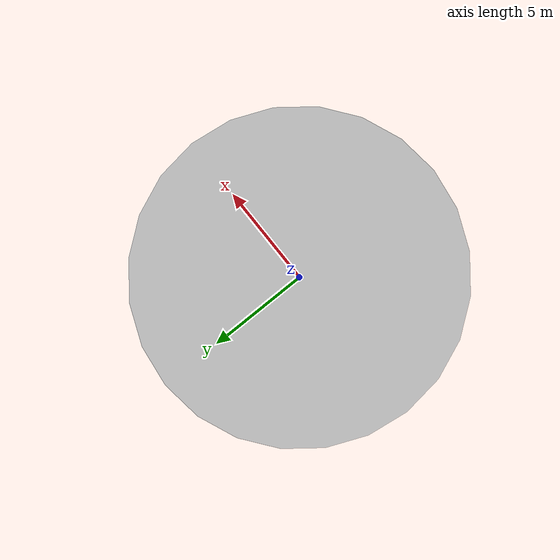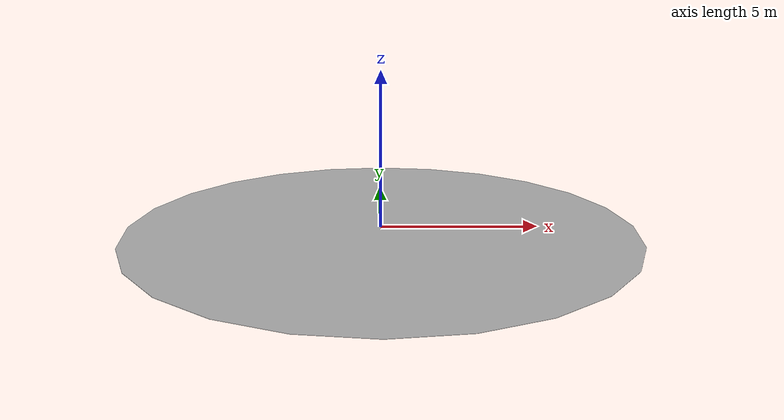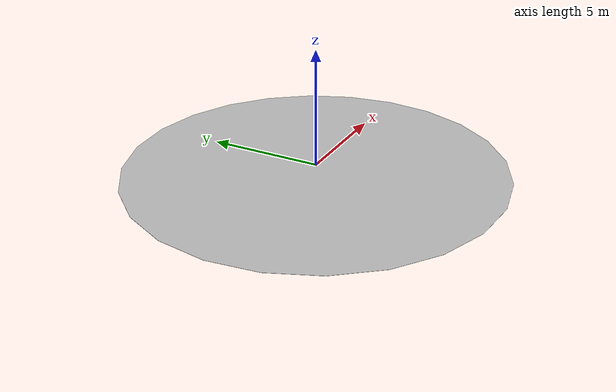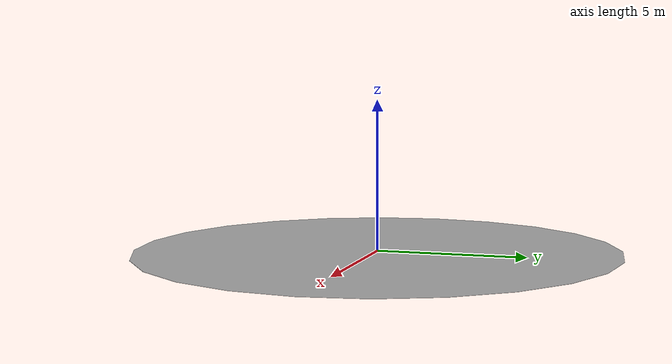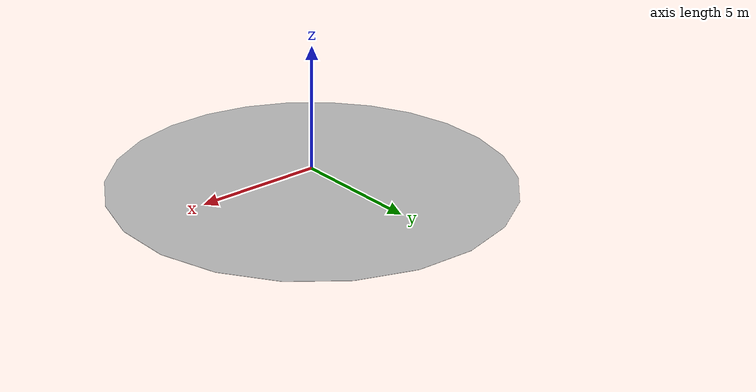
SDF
<?xml version="1.0" ?>
<sdf version="1.5">
  <model name="road_net_node_sensor">
    <static>true</static>
    <link name="road_node_sensor">
      <collision name="node_entire_collision">
        <pose>0 0 0 0 0 0</pose>
        <geometry>
          <cylinder>
            <!-- Must be 5.4 for dev branch -->
            <radius>8.1</radius>
            <length>0.01</length>
          </cylinder>
        </geometry>
      </collision>
      <visual name="node_entire_visual">
        <pose>0 0 0 0 0 0</pose>
        <geometry>
          <cylinder>
            <radius>8.1</radius>
            <length>0.01</length>
          </cylinder>
        </geometry>
        <material>
          <script>
            <uri>model://road_net_node_sensor/materials/scripts</uri>
            <uri>model://road_net_node_sensor/materials/textures</uri>
            <name>imaginary</name>
          </script>
        </material>
      </visual>
      <sensor name="contact_sensor" type="contact">
        <always_on>true</always_on>
        <update_rate>.2</update_rate>
        <contact>
          <collision>node_entire_collision</collision>
        </contact>
        <plugin name="node_gazebo_ros_bumper_controller" filename="libgazebo_ros_bumper.so">
          <alwaysOn>true</alwaysOn>
          <updateRate>.2</updateRate>
          <bumperTopicName>pressure_plate_sensor</bumperTopicName>
          <frameName>nodeSensor</frameName>
        </plugin>
      </sensor>
    </link>
  </model>
</sdf>
